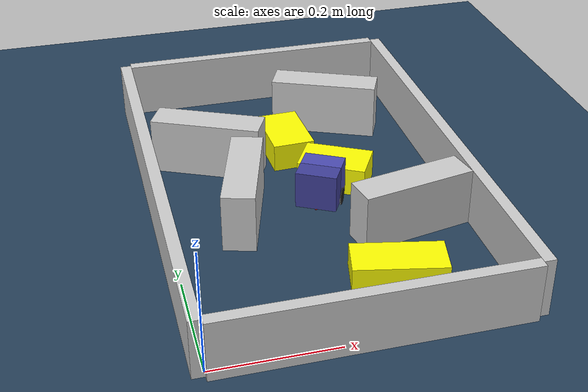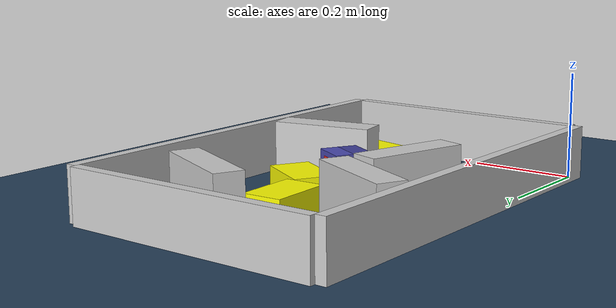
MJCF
<?xml version='1.0' encoding='utf-8'?>
<mujoco model="real_buildable">
  <compiler angle="degree" />
  <option timestep="0.002" integrator="implicitfast" iterations="100" cone="elliptic" />
  <default>
    <geom density="1" />
  </default>
  <asset>
    <texture builtin="gradient" height="3072" rgb1="0.3 0.5 0.7" rgb2="0 0 0" type="skybox" width="512" />
    <texture builtin="checker" height="300" mark="edge" markrgb="0.8 0.8 0.8" name="groundplane" rgb1="0.2 0.3 0.4" rgb2="0.1 0.2 0.3" type="2d" width="300" />
    <material name="groundplane" reflectance="0.2" texrepeat="5 5" texture="groundplane" texuniform="true" />
  </asset>
  <worldbody>
    <light dir="0 0 -1" directional="true" pos="0 0 1.5" />
    <geom name="floor" type="plane" condim="4" friction="0.5 0.005 0.001" material="groundplane" size="0 0 0.05" />
    <body name="walls">
      <geom name="wall_boundary_left" type="box" condim="4" friction="1.0 0.005 0.0001" rgba="0.8 0.8 0.8 1" pos="-0.010000 0.387500 0.050000" euler="0 0 0.000000" size="0.010000 0.397500 0.050000" />
      <geom name="wall_boundary_right" type="box" condim="4" friction="1.0 0.005 0.0001" rgba="0.8 0.8 0.8 1" pos="0.500000 0.387500 0.050000" euler="0 0 0.000000" size="0.010000 0.397500 0.050000" />
      <geom name="wall_boundary_bottom" type="box" condim="4" friction="1.0 0.005 0.0001" rgba="0.8 0.8 0.8 1" pos="0.245000 -0.010000 0.050000" euler="0 0 0.000000" size="0.245000 0.010000 0.050000" />
      <geom name="wall_boundary_top" type="box" condim="4" friction="1.0 0.005 0.0001" rgba="0.8 0.8 0.8 1" pos="0.245000 0.785000 0.050000" euler="0 0 0.000000" size="0.245000 0.010000 0.050000" />
      <geom name="wall_inner_1" type="box" condim="4" friction="1.0 0.005 0.0001" rgba="0.8 0.8 0.8 1" pos="0.389010 0.253420 0.050000" euler="0 0 191.237192" size="0.097500 0.027500 0.050000" />
      <geom name="wall_inner_2" type="box" condim="4" friction="1.0 0.005 0.0001" rgba="0.8 0.8 0.8 1" pos="0.132067 0.356856 0.050000" euler="0 0 73.532126" size="0.097500 0.027500 0.050000" />
      <geom name="wall_inner_3" type="box" condim="4" friction="1.0 0.005 0.0001" rgba="0.8 0.8 0.8 1" pos="0.106000 0.530000 0.050000" euler="0 0 154.200000" size="0.097500 0.027500 0.050000" />
      <geom name="wall_inner_4" type="box" condim="4" friction="1.0 0.005 0.0001" rgba="0.8 0.8 0.8 1" pos="0.350000 0.630000 0.050000" euler="0 0 155.700000" size="0.097500 0.027500 0.050000" />
    </body>
    <body name="car" pos="0.26520090578913608 0.35782994830271314 0.01" quat="0.86202409594574692 0 0 0.5068672982240201">
      <freejoint name="car_freejoint" />
      <inertial pos="0 0 0.0375" mass="0.35" diaginertia="0.000266 0.000266 0.000286" />
      <geom name="front_chassis_collision" type="box" pos="0.0175 0 0.0375" size="0.0175 0.035 0.0325" rgba="0.3 0.3 0.7 1" />
      <geom name="rear_chassis_collision" type="box" pos="-0.0175 0 0.0375" size="0.0175 0.035 0.0325" rgba="0.25 0.25 0.6 1" />
      <geom name="front_marker" type="box" pos="0.034 0 0.0505" size="0.002 0.015 0.01" rgba="1 0.2 0.2 1" contype="0" conaffinity="0" />
      <body name="rear_support_body" pos="-0.03 0 0.0025">
        <joint name="rear_caster_joint" type="ball" damping="0.0001" />
        <inertial pos="0 0 0" mass="0.025" diaginertia="0.000001 0.000001 0.000001" />
        <geom name="rear_support" type="sphere" pos="0 0 0" size="0.0025" friction="0 0 0" rgba="0.7 0.1 0.1 1" />
      </body>
      <body name="front_support_body" pos="0.03 0 0.0025">
        <joint name="front_caster_joint" type="ball" damping="0.0001" />
        <inertial pos="0 0 0" mass="0.025" diaginertia="0.000001 0.000001 0.000001" />
        <geom name="front_support" type="sphere" pos="0 0 0" size="0.0025" friction="0 0 0" rgba="0.1 0.7 0.1 1" />
      </body>
      <body name="left_wheel" pos="0 0.0375 0.015">
        <inertial pos="0 0 0" mass="0.05" diaginertia="0.000003 0.000006 0.000003" />
        <joint name="left_wheel_joint" type="hinge" axis="0 1 0" damping="0.01" armature="0.0001" />
        <geom name="left_wheel_collision" type="cylinder" size="0.015 0.0005" euler="90 0 0" rgba="0.1 0.1 0.1 1" />
      </body>
      <body name="right_wheel" pos="0 -0.0375 0.015">
        <inertial pos="0 0 0" mass="0.05" diaginertia="0.000003 0.000006 0.000003" />
        <joint name="right_wheel_joint" type="hinge" axis="0 1 0" damping="0.01" armature="0.0001" />
        <geom name="right_wheel_collision" type="cylinder" size="0.015 0.0005" euler="90 0 0" rgba="0.1 0.1 0.1 1" />
      </body>
    </body>
    <body name="obstacle_0_movable">
      <geom name="obstacle_0_movable" condim="4" pos="0.31176293408728295 0.42701260980978534 0.025000000000000001" friction="1 0.005 0.0001" rgba="1 1 0 1" size="0.037500 0.060000 0.025000" type="box" mass="0.1" quat="0.86270922736866906 0 0 0.5057002956425416" />
      <joint type="free" />
    </body>
    <body name="obstacle_1_movable">
      <geom name="obstacle_1_movable" condim="4" pos="0.25100000000000056 0.55000000000000138 0.025000000000000001" friction="1 0.005 0.0001" rgba="1 1 0 1" size="0.037500 0.060000 0.025000" type="box" mass="0.1" quat="0.99976202707990913 0 0 0.02181488503456112" />
      <joint type="free" />
    </body>
    <body name="obstacle_2_movable">
      <geom name="obstacle_2_movable" condim="4" pos="0.32717599999999986 0.1346759999999998 0.02" friction="1 0.005 0.0001" rgba="1 1 0 1" size="0.035000 0.075000 0.020000" type="box" mass="0.1" quat="0.77859820000903734 0 0 0.62752278280767393" />
      <joint type="free" />
    </body>
    <site name="goal" type="sphere" pos="0.080000 0.700000 0.0" size="0.02" rgba="1 0 0 0.5" />
  </worldbody>
  <actuator>
    <velocity name="left_wheel_drive" joint="left_wheel_joint" ctrlrange="-25 25" kv="0.75" forcerange="-0.5 0.5" />
    <velocity name="right_wheel_drive" joint="right_wheel_joint" ctrlrange="-25 25" kv="0.75" forcerange="-0.5 0.5" />
  </actuator>
</mujoco>
